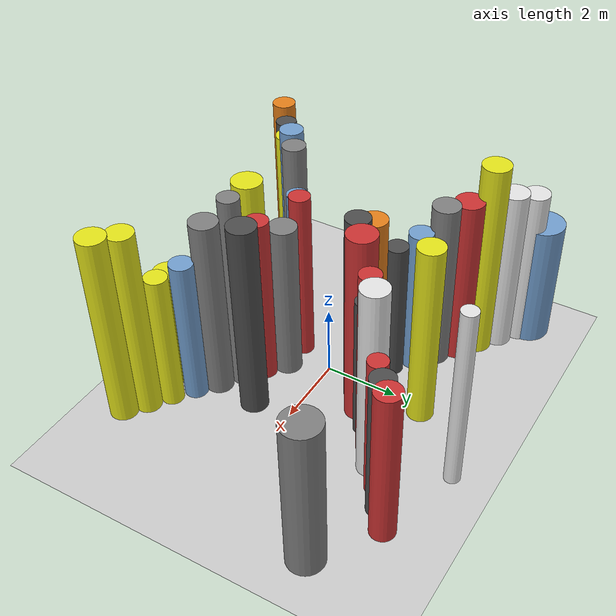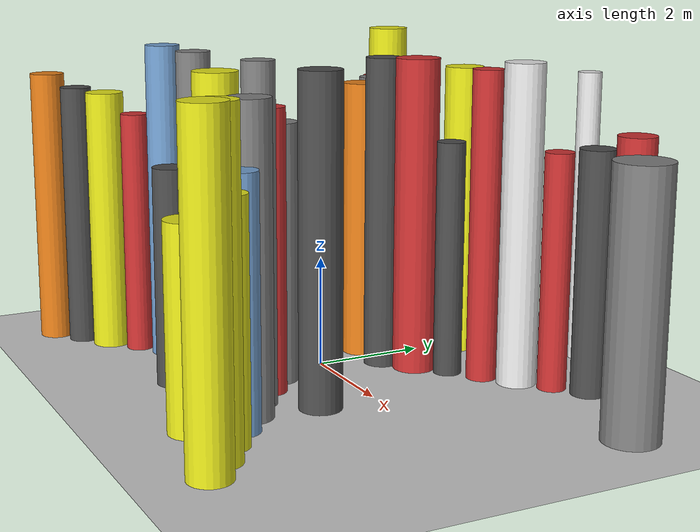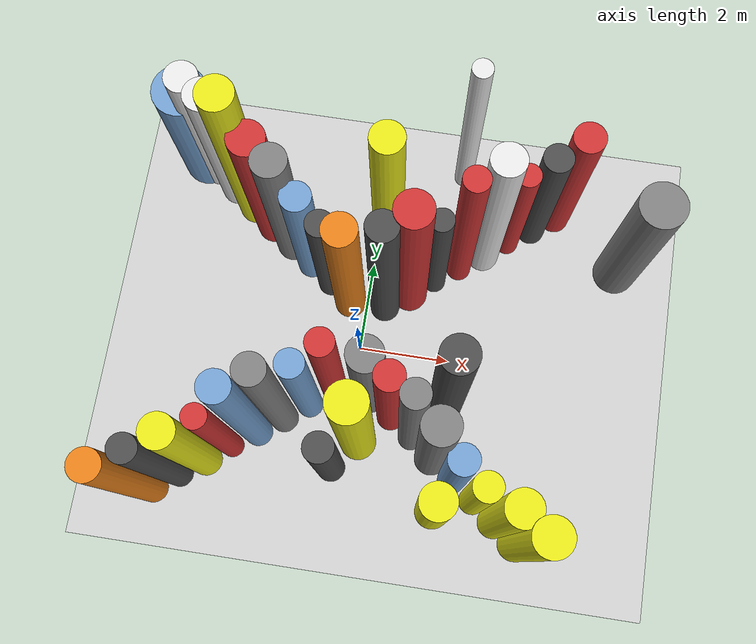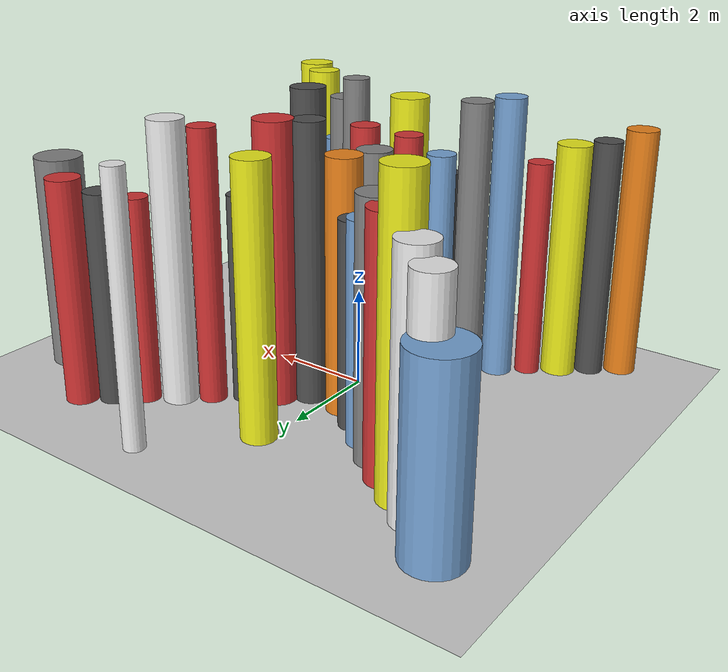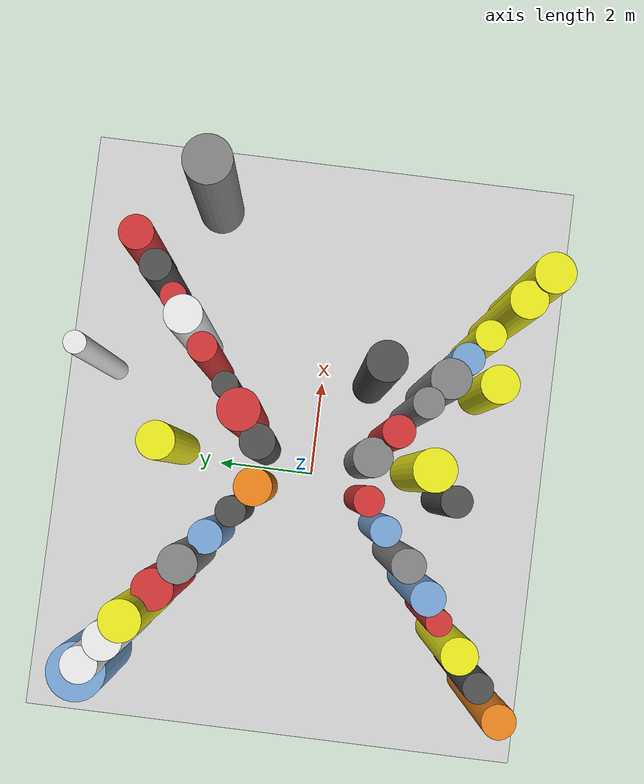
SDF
<?xml version='1.0'?>
<sdf version='1.6'>
  <world name='routeA_rl_v1__dense_recovery__rl_train__bottleneck_corridor__000064'>
    <!-- Sun light -->
    <light name='sun' type='directional'>
      <cast_shadows>1</cast_shadows>
      <pose>0 0 10 0 0 0</pose>
      <diffuse>0.8 0.8 0.8 1</diffuse>
      <specular>0.2 0.2 0.2 1</specular>
      <attenuation>
        <range>1000</range>
        <constant>0.9</constant>
        <linear>0.01</linear>
        <quadratic>0.001</quadratic>
      </attenuation>
      <direction>-0.5 0.1 -0.9</direction>
    </light>

    <!-- Ground plane -->
    <model name='ground_plane'>
      <static>1</static>
      <link name='link'>
        <collision name='collision'>
          <geometry>
            <plane>
              <normal>0 0 1</normal>
              <size>100 100</size>
            </plane>
          </geometry>
          <surface>
            <contact>
              <collide_bitmask>65535</collide_bitmask>
              <ode/>
            </contact>
            <friction>
              <ode>
                <mu>100</mu>
                <mu2>50</mu2>
              </ode>
              <torsional><ode/></torsional>
            </friction>
            <bounce/>
          </surface>
          <max_contacts>10</max_contacts>
        </collision>
        <visual name='visual'>
          <cast_shadows>0</cast_shadows>
          <geometry>
            <plane>
              <normal>0 0 1</normal>
              <size>100 100</size>
            </plane>
          </geometry>
          <material>
            <script>
              <uri>file://media/materials/scripts/gazebo.material</uri>
              <n>Gazebo/Grey</n>
            </script>
          </material>
        </visual>
      </link>
    </model>

    <!-- Environment -->
    <magnetic_field>6e-06 2.3e-05 -4.2e-05</magnetic_field>
    <atmosphere type='adiabatic'/>
    <physics name='default_physics' default='0' type='ode'>
      <gravity>0 0 -9.8</gravity>
      <max_step_size>0.004</max_step_size>
      <real_time_factor>1</real_time_factor>
      <real_time_update_rate>250</real_time_update_rate>
    </physics>
    <scene>
      <ambient>0.4 0.4 0.4 1</ambient>
      <background>0.7 0.7 0.7 1</background>
      <shadows>1</shadows>
    </scene>
    <wind/>
    <spherical_coordinates>
      <surface_model>EARTH_WGS84</surface_model>
      <latitude_deg>0</latitude_deg>
      <longitude_deg>0</longitude_deg>
      <elevation>0</elevation>
      <heading_deg>0</heading_deg>
    </spherical_coordinates>

    <!-- ============ OBSTACLES (40) ============ -->
    <model name='funnel_l_0'>
      <static>1</static>
      <link name='link'>
        <visual name='visual'>
          <geometry>
            <cylinder>
              <radius>0.3156</radius>
              <length>5.1318</length>
            </cylinder>
          </geometry>
          <material>
            <script>
              <n>Gazebo/Orange</n>
              <uri>file://media/materials/scripts/gazebo.material</uri>
            </script>
            <ambient>0.9 0.5 0.1 1</ambient>
          </material>
        </visual>
        <collision name='collision'>
          <geometry>
            <cylinder>
              <radius>0.3156</radius>
              <length>5.1318</length>
            </cylinder>
          </geometry>
          <max_contacts>10</max_contacts>
          <surface>
            <contact><ode/></contact>
            <bounce/>
            <friction>
              <ode><mu>1</mu><mu2>1</mu2></ode>
              <torsional><ode/></torsional>
            </friction>
          </surface>
        </collision>
      </link>
      <pose>-4.0000 -3.8000 2.5659 0 0 0.0000</pose>
    </model>

    <model name='funnel_r_0'>
      <static>1</static>
      <link name='link'>
        <visual name='visual'>
          <geometry>
            <cylinder>
              <radius>0.3508</radius>
              <length>4.6674</length>
            </cylinder>
          </geometry>
          <material>
            <script>
              <n>Gazebo/White</n>
              <uri>file://media/materials/scripts/gazebo.material</uri>
            </script>
            <ambient>0.9 0.9 0.9 1</ambient>
          </material>
        </visual>
        <collision name='collision'>
          <geometry>
            <cylinder>
              <radius>0.3508</radius>
              <length>4.6674</length>
            </cylinder>
          </geometry>
          <max_contacts>10</max_contacts>
          <surface>
            <contact><ode/></contact>
            <bounce/>
            <friction>
              <ode><mu>1</mu><mu2>1</mu2></ode>
              <torsional><ode/></torsional>
            </friction>
          </surface>
        </collision>
      </link>
      <pose>-4.0000 3.8000 2.3337 0 0 0.0000</pose>
    </model>

    <model name='funnel_l_1'>
      <static>1</static>
      <link name='link'>
        <visual name='visual'>
          <geometry>
            <cylinder>
              <radius>0.2849</radius>
              <length>4.9061</length>
            </cylinder>
          </geometry>
          <material>
            <script>
              <n>Gazebo/DarkGrey</n>
              <uri>file://media/materials/scripts/gazebo.material</uri>
            </script>
            <ambient>0.3 0.3 0.3 1</ambient>
          </material>
        </visual>
        <collision name='collision'>
          <geometry>
            <cylinder>
              <radius>0.2849</radius>
              <length>4.9061</length>
            </cylinder>
          </geometry>
          <max_contacts>10</max_contacts>
          <surface>
            <contact><ode/></contact>
            <bounce/>
            <friction>
              <ode><mu>1</mu><mu2>1</mu2></ode>
              <torsional><ode/></torsional>
            </friction>
          </surface>
        </collision>
      </link>
      <pose>-3.4857 -3.4071 2.4531 0 0 0.0000</pose>
    </model>

    <model name='funnel_r_1'>
      <static>1</static>
      <link name='link'>
        <visual name='visual'>
          <geometry>
            <cylinder>
              <radius>0.3702</radius>
              <length>4.8591</length>
            </cylinder>
          </geometry>
          <material>
            <script>
              <n>Gazebo/White</n>
              <uri>file://media/materials/scripts/gazebo.material</uri>
            </script>
            <ambient>0.9 0.9 0.9 1</ambient>
          </material>
        </visual>
        <collision name='collision'>
          <geometry>
            <cylinder>
              <radius>0.3702</radius>
              <length>4.8591</length>
            </cylinder>
          </geometry>
          <max_contacts>10</max_contacts>
          <surface>
            <contact><ode/></contact>
            <bounce/>
            <friction>
              <ode><mu>1</mu><mu2>1</mu2></ode>
              <torsional><ode/></torsional>
            </friction>
          </surface>
        </collision>
      </link>
      <pose>-3.4857 3.4071 2.4295 0 0 0.0000</pose>
    </model>

    <model name='funnel_l_2'>
      <static>1</static>
      <link name='link'>
        <visual name='visual'>
          <geometry>
            <cylinder>
              <radius>0.3476</radius>
              <length>4.8487</length>
            </cylinder>
          </geometry>
          <material>
            <script>
              <n>Gazebo/Yellow</n>
              <uri>file://media/materials/scripts/gazebo.material</uri>
            </script>
            <ambient>0.9 0.9 0.1 1</ambient>
          </material>
        </visual>
        <collision name='collision'>
          <geometry>
            <cylinder>
              <radius>0.3476</radius>
              <length>4.8487</length>
            </cylinder>
          </geometry>
          <max_contacts>10</max_contacts>
          <surface>
            <contact><ode/></contact>
            <bounce/>
            <friction>
              <ode><mu>1</mu><mu2>1</mu2></ode>
              <torsional><ode/></torsional>
            </friction>
          </surface>
        </collision>
      </link>
      <pose>-2.9714 -3.0143 2.4244 0 0 0.0000</pose>
    </model>

    <model name='funnel_r_2'>
      <static>1</static>
      <link name='link'>
        <visual name='visual'>
          <geometry>
            <cylinder>
              <radius>0.3817</radius>
              <length>5.8214</length>
            </cylinder>
          </geometry>
          <material>
            <script>
              <n>Gazebo/Yellow</n>
              <uri>file://media/materials/scripts/gazebo.material</uri>
            </script>
            <ambient>0.9 0.9 0.1 1</ambient>
          </material>
        </visual>
        <collision name='collision'>
          <geometry>
            <cylinder>
              <radius>0.3817</radius>
              <length>5.8214</length>
            </cylinder>
          </geometry>
          <max_contacts>10</max_contacts>
          <surface>
            <contact><ode/></contact>
            <bounce/>
            <friction>
              <ode><mu>1</mu><mu2>1</mu2></ode>
              <torsional><ode/></torsional>
            </friction>
          </surface>
        </collision>
      </link>
      <pose>-2.9714 3.0143 2.9107 0 0 0.0000</pose>
    </model>

    <model name='funnel_l_3'>
      <static>1</static>
      <link name='link'>
        <visual name='visual'>
          <geometry>
            <cylinder>
              <radius>0.2508</radius>
              <length>4.4868</length>
            </cylinder>
          </geometry>
          <material>
            <script>
              <n>Gazebo/Red</n>
              <uri>file://media/materials/scripts/gazebo.material</uri>
            </script>
            <ambient>0.8 0.2 0.2 1</ambient>
          </material>
        </visual>
        <collision name='collision'>
          <geometry>
            <cylinder>
              <radius>0.2508</radius>
              <length>4.4868</length>
            </cylinder>
          </geometry>
          <max_contacts>10</max_contacts>
          <surface>
            <contact><ode/></contact>
            <bounce/>
            <friction>
              <ode><mu>1</mu><mu2>1</mu2></ode>
              <torsional><ode/></torsional>
            </friction>
          </surface>
        </collision>
      </link>
      <pose>-2.4571 -2.6214 2.2434 0 0 0.0000</pose>
    </model>

    <model name='funnel_r_3'>
      <static>1</static>
      <link name='link'>
        <visual name='visual'>
          <geometry>
            <cylinder>
              <radius>0.3904</radius>
              <length>4.9308</length>
            </cylinder>
          </geometry>
          <material>
            <script>
              <n>Gazebo/Red</n>
              <uri>file://media/materials/scripts/gazebo.material</uri>
            </script>
            <ambient>0.8 0.2 0.2 1</ambient>
          </material>
        </visual>
        <collision name='collision'>
          <geometry>
            <cylinder>
              <radius>0.3904</radius>
              <length>4.9308</length>
            </cylinder>
          </geometry>
          <max_contacts>10</max_contacts>
          <surface>
            <contact><ode/></contact>
            <bounce/>
            <friction>
              <ode><mu>1</mu><mu2>1</mu2></ode>
              <torsional><ode/></torsional>
            </friction>
          </surface>
        </collision>
      </link>
      <pose>-2.4571 2.6214 2.4654 0 0 0.0000</pose>
    </model>

    <model name='funnel_l_4'>
      <static>1</static>
      <link name='link'>
        <visual name='visual'>
          <geometry>
            <cylinder>
              <radius>0.3124</radius>
              <length>5.7771</length>
            </cylinder>
          </geometry>
          <material>
            <script>
              <n>Gazebo/Blue</n>
              <uri>file://media/materials/scripts/gazebo.material</uri>
            </script>
            <ambient>0.447 0.624 0.812 1</ambient>
          </material>
        </visual>
        <collision name='collision'>
          <geometry>
            <cylinder>
              <radius>0.3124</radius>
              <length>5.7771</length>
            </cylinder>
          </geometry>
          <max_contacts>10</max_contacts>
          <surface>
            <contact><ode/></contact>
            <bounce/>
            <friction>
              <ode><mu>1</mu><mu2>1</mu2></ode>
              <torsional><ode/></torsional>
            </friction>
          </surface>
        </collision>
      </link>
      <pose>-1.9429 -2.2286 2.8886 0 0 0.0000</pose>
    </model>

    <model name='funnel_r_4'>
      <static>1</static>
      <link name='link'>
        <visual name='visual'>
          <geometry>
            <cylinder>
              <radius>0.3683</radius>
              <length>4.9725</length>
            </cylinder>
          </geometry>
          <material>
            <script>
              <n>Gazebo/Grey</n>
              <uri>file://media/materials/scripts/gazebo.material</uri>
            </script>
            <ambient>0.5 0.5 0.5 1</ambient>
          </material>
        </visual>
        <collision name='collision'>
          <geometry>
            <cylinder>
              <radius>0.3683</radius>
              <length>4.9725</length>
            </cylinder>
          </geometry>
          <max_contacts>10</max_contacts>
          <surface>
            <contact><ode/></contact>
            <bounce/>
            <friction>
              <ode><mu>1</mu><mu2>1</mu2></ode>
              <torsional><ode/></torsional>
            </friction>
          </surface>
        </collision>
      </link>
      <pose>-1.9429 2.2286 2.4862 0 0 0.0000</pose>
    </model>

    <model name='funnel_l_5'>
      <static>1</static>
      <link name='link'>
        <visual name='visual'>
          <geometry>
            <cylinder>
              <radius>0.3131</radius>
              <length>5.6935</length>
            </cylinder>
          </geometry>
          <material>
            <script>
              <n>Gazebo/Grey</n>
              <uri>file://media/materials/scripts/gazebo.material</uri>
            </script>
            <ambient>0.5 0.5 0.5 1</ambient>
          </material>
        </visual>
        <collision name='collision'>
          <geometry>
            <cylinder>
              <radius>0.3131</radius>
              <length>5.6935</length>
            </cylinder>
          </geometry>
          <max_contacts>10</max_contacts>
          <surface>
            <contact><ode/></contact>
            <bounce/>
            <friction>
              <ode><mu>1</mu><mu2>1</mu2></ode>
              <torsional><ode/></torsional>
            </friction>
          </surface>
        </collision>
      </link>
      <pose>-1.4286 -1.8357 2.8467 0 0 0.0000</pose>
    </model>

    <model name='funnel_r_5'>
      <static>1</static>
      <link name='link'>
        <visual name='visual'>
          <geometry>
            <cylinder>
              <radius>0.3254</radius>
              <length>4.3344</length>
            </cylinder>
          </geometry>
          <material>
            <script>
              <n>Gazebo/Blue</n>
              <uri>file://media/materials/scripts/gazebo.material</uri>
            </script>
            <ambient>0.447 0.624 0.812 1</ambient>
          </material>
        </visual>
        <collision name='collision'>
          <geometry>
            <cylinder>
              <radius>0.3254</radius>
              <length>4.3344</length>
            </cylinder>
          </geometry>
          <max_contacts>10</max_contacts>
          <surface>
            <contact><ode/></contact>
            <bounce/>
            <friction>
              <ode><mu>1</mu><mu2>1</mu2></ode>
              <torsional><ode/></torsional>
            </friction>
          </surface>
        </collision>
      </link>
      <pose>-1.4286 1.8357 2.1672 0 0 0.0000</pose>
    </model>

    <model name='funnel_l_6'>
      <static>1</static>
      <link name='link'>
        <visual name='visual'>
          <geometry>
            <cylinder>
              <radius>0.2907</radius>
              <length>4.6531</length>
            </cylinder>
          </geometry>
          <material>
            <script>
              <n>Gazebo/Blue</n>
              <uri>file://media/materials/scripts/gazebo.material</uri>
            </script>
            <ambient>0.447 0.624 0.812 1</ambient>
          </material>
        </visual>
        <collision name='collision'>
          <geometry>
            <cylinder>
              <radius>0.2907</radius>
              <length>4.6531</length>
            </cylinder>
          </geometry>
          <max_contacts>10</max_contacts>
          <surface>
            <contact><ode/></contact>
            <bounce/>
            <friction>
              <ode><mu>1</mu><mu2>1</mu2></ode>
              <torsional><ode/></torsional>
            </friction>
          </surface>
        </collision>
      </link>
      <pose>-0.9143 -1.4429 2.3266 0 0 0.0000</pose>
    </model>

    <model name='funnel_r_6'>
      <static>1</static>
      <link name='link'>
        <visual name='visual'>
          <geometry>
            <cylinder>
              <radius>0.2925</radius>
              <length>4.1059</length>
            </cylinder>
          </geometry>
          <material>
            <script>
              <n>Gazebo/DarkGrey</n>
              <uri>file://media/materials/scripts/gazebo.material</uri>
            </script>
            <ambient>0.3 0.3 0.3 1</ambient>
          </material>
        </visual>
        <collision name='collision'>
          <geometry>
            <cylinder>
              <radius>0.2925</radius>
              <length>4.1059</length>
            </cylinder>
          </geometry>
          <max_contacts>10</max_contacts>
          <surface>
            <contact><ode/></contact>
            <bounce/>
            <friction>
              <ode><mu>1</mu><mu2>1</mu2></ode>
              <torsional><ode/></torsional>
            </friction>
          </surface>
        </collision>
      </link>
      <pose>-0.9143 1.4429 2.0529 0 0 0.0000</pose>
    </model>

    <model name='funnel_l_7'>
      <static>1</static>
      <link name='link'>
        <visual name='visual'>
          <geometry>
            <cylinder>
              <radius>0.2832</radius>
              <length>5.0353</length>
            </cylinder>
          </geometry>
          <material>
            <script>
              <n>Gazebo/Red</n>
              <uri>file://media/materials/scripts/gazebo.material</uri>
            </script>
            <ambient>0.8 0.2 0.2 1</ambient>
          </material>
        </visual>
        <collision name='collision'>
          <geometry>
            <cylinder>
              <radius>0.2832</radius>
              <length>5.0353</length>
            </cylinder>
          </geometry>
          <max_contacts>10</max_contacts>
          <surface>
            <contact><ode/></contact>
            <bounce/>
            <friction>
              <ode><mu>1</mu><mu2>1</mu2></ode>
              <torsional><ode/></torsional>
            </friction>
          </surface>
        </collision>
      </link>
      <pose>-0.4000 -1.0500 2.5176 0 0 0.0000</pose>
    </model>

    <model name='funnel_r_7'>
      <static>1</static>
      <link name='link'>
        <visual name='visual'>
          <geometry>
            <cylinder>
              <radius>0.3536</radius>
              <length>5.0909</length>
            </cylinder>
          </geometry>
          <material>
            <script>
              <n>Gazebo/Orange</n>
              <uri>file://media/materials/scripts/gazebo.material</uri>
            </script>
            <ambient>0.9 0.5 0.1 1</ambient>
          </material>
        </visual>
        <collision name='collision'>
          <geometry>
            <cylinder>
              <radius>0.3536</radius>
              <length>5.0909</length>
            </cylinder>
          </geometry>
          <max_contacts>10</max_contacts>
          <surface>
            <contact><ode/></contact>
            <bounce/>
            <friction>
              <ode><mu>1</mu><mu2>1</mu2></ode>
              <torsional><ode/></torsional>
            </friction>
          </surface>
        </collision>
      </link>
      <pose>-0.4000 1.0500 2.5455 0 0 0.0000</pose>
    </model>

    <model name='funnel_out_l_0'>
      <static>1</static>
      <link name='link'>
        <visual name='visual'>
          <geometry>
            <cylinder>
              <radius>0.3735</radius>
              <length>4.6185</length>
            </cylinder>
          </geometry>
          <material>
            <script>
              <n>Gazebo/Grey</n>
              <uri>file://media/materials/scripts/gazebo.material</uri>
            </script>
            <ambient>0.5 0.5 0.5 1</ambient>
          </material>
        </visual>
        <collision name='collision'>
          <geometry>
            <cylinder>
              <radius>0.3735</radius>
              <length>4.6185</length>
            </cylinder>
          </geometry>
          <max_contacts>10</max_contacts>
          <surface>
            <contact><ode/></contact>
            <bounce/>
            <friction>
              <ode><mu>1</mu><mu2>1</mu2></ode>
              <torsional><ode/></torsional>
            </friction>
          </surface>
        </collision>
      </link>
      <pose>0.4000 -1.0500 2.3092 0 0 0.0000</pose>
    </model>

    <model name='funnel_out_r_0'>
      <static>1</static>
      <link name='link'>
        <visual name='visual'>
          <geometry>
            <cylinder>
              <radius>0.3239</radius>
              <length>5.6220</length>
            </cylinder>
          </geometry>
          <material>
            <script>
              <n>Gazebo/DarkGrey</n>
              <uri>file://media/materials/scripts/gazebo.material</uri>
            </script>
            <ambient>0.3 0.3 0.3 1</ambient>
          </material>
        </visual>
        <collision name='collision'>
          <geometry>
            <cylinder>
              <radius>0.3239</radius>
              <length>5.6220</length>
            </cylinder>
          </geometry>
          <max_contacts>10</max_contacts>
          <surface>
            <contact><ode/></contact>
            <bounce/>
            <friction>
              <ode><mu>1</mu><mu2>1</mu2></ode>
              <torsional><ode/></torsional>
            </friction>
          </surface>
        </collision>
      </link>
      <pose>0.4000 1.0500 2.8110 0 0 0.0000</pose>
    </model>

    <model name='funnel_out_l_1'>
      <static>1</static>
      <link name='link'>
        <visual name='visual'>
          <geometry>
            <cylinder>
              <radius>0.3063</radius>
              <length>4.9660</length>
            </cylinder>
          </geometry>
          <material>
            <script>
              <n>Gazebo/Red</n>
              <uri>file://media/materials/scripts/gazebo.material</uri>
            </script>
            <ambient>0.8 0.2 0.2 1</ambient>
          </material>
        </visual>
        <collision name='collision'>
          <geometry>
            <cylinder>
              <radius>0.3063</radius>
              <length>4.9660</length>
            </cylinder>
          </geometry>
          <max_contacts>10</max_contacts>
          <surface>
            <contact><ode/></contact>
            <bounce/>
            <friction>
              <ode><mu>1</mu><mu2>1</mu2></ode>
              <torsional><ode/></torsional>
            </friction>
          </surface>
        </collision>
      </link>
      <pose>0.9143 -1.4429 2.4830 0 0 0.0000</pose>
    </model>

    <model name='funnel_out_r_1'>
      <static>1</static>
      <link name='link'>
        <visual name='visual'>
          <geometry>
            <cylinder>
              <radius>0.3908</radius>
              <length>5.6394</length>
            </cylinder>
          </geometry>
          <material>
            <script>
              <n>Gazebo/Red</n>
              <uri>file://media/materials/scripts/gazebo.material</uri>
            </script>
            <ambient>0.8 0.2 0.2 1</ambient>
          </material>
        </visual>
        <collision name='collision'>
          <geometry>
            <cylinder>
              <radius>0.3908</radius>
              <length>5.6394</length>
            </cylinder>
          </geometry>
          <max_contacts>10</max_contacts>
          <surface>
            <contact><ode/></contact>
            <bounce/>
            <friction>
              <ode><mu>1</mu><mu2>1</mu2></ode>
              <torsional><ode/></torsional>
            </friction>
          </surface>
        </collision>
      </link>
      <pose>0.9143 1.4429 2.8197 0 0 0.0000</pose>
    </model>

    <model name='funnel_out_l_2'>
      <static>1</static>
      <link name='link'>
        <visual name='visual'>
          <geometry>
            <cylinder>
              <radius>0.2823</radius>
              <length>5.8036</length>
            </cylinder>
          </geometry>
          <material>
            <script>
              <n>Gazebo/Grey</n>
              <uri>file://media/materials/scripts/gazebo.material</uri>
            </script>
            <ambient>0.5 0.5 0.5 1</ambient>
          </material>
        </visual>
        <collision name='collision'>
          <geometry>
            <cylinder>
              <radius>0.2823</radius>
              <length>5.8036</length>
            </cylinder>
          </geometry>
          <max_contacts>10</max_contacts>
          <surface>
            <contact><ode/></contact>
            <bounce/>
            <friction>
              <ode><mu>1</mu><mu2>1</mu2></ode>
              <torsional><ode/></torsional>
            </friction>
          </surface>
        </collision>
      </link>
      <pose>1.4286 -1.8357 2.9018 0 0 0.0000</pose>
    </model>

    <model name='funnel_out_r_2'>
      <static>1</static>
      <link name='link'>
        <visual name='visual'>
          <geometry>
            <cylinder>
              <radius>0.2514</radius>
              <length>4.2108</length>
            </cylinder>
          </geometry>
          <material>
            <script>
              <n>Gazebo/DarkGrey</n>
              <uri>file://media/materials/scripts/gazebo.material</uri>
            </script>
            <ambient>0.3 0.3 0.3 1</ambient>
          </material>
        </visual>
        <collision name='collision'>
          <geometry>
            <cylinder>
              <radius>0.2514</radius>
              <length>4.2108</length>
            </cylinder>
          </geometry>
          <max_contacts>10</max_contacts>
          <surface>
            <contact><ode/></contact>
            <bounce/>
            <friction>
              <ode><mu>1</mu><mu2>1</mu2></ode>
              <torsional><ode/></torsional>
            </friction>
          </surface>
        </collision>
      </link>
      <pose>1.4286 1.8357 2.1054 0 0 0.0000</pose>
    </model>

    <model name='funnel_out_l_3'>
      <static>1</static>
      <link name='link'>
        <visual name='visual'>
          <geometry>
            <cylinder>
              <radius>0.3729</radius>
              <length>5.2935</length>
            </cylinder>
          </geometry>
          <material>
            <script>
              <n>Gazebo/Grey</n>
              <uri>file://media/materials/scripts/gazebo.material</uri>
            </script>
            <ambient>0.5 0.5 0.5 1</ambient>
          </material>
        </visual>
        <collision name='collision'>
          <geometry>
            <cylinder>
              <radius>0.3729</radius>
              <length>5.2935</length>
            </cylinder>
          </geometry>
          <max_contacts>10</max_contacts>
          <surface>
            <contact><ode/></contact>
            <bounce/>
            <friction>
              <ode><mu>1</mu><mu2>1</mu2></ode>
              <torsional><ode/></torsional>
            </friction>
          </surface>
        </collision>
      </link>
      <pose>1.9429 -2.2286 2.6467 0 0 0.0000</pose>
    </model>

    <model name='funnel_out_r_3'>
      <static>1</static>
      <link name='link'>
        <visual name='visual'>
          <geometry>
            <cylinder>
              <radius>0.2732</radius>
              <length>5.5075</length>
            </cylinder>
          </geometry>
          <material>
            <script>
              <n>Gazebo/Red</n>
              <uri>file://media/materials/scripts/gazebo.material</uri>
            </script>
            <ambient>0.8 0.2 0.2 1</ambient>
          </material>
        </visual>
        <collision name='collision'>
          <geometry>
            <cylinder>
              <radius>0.2732</radius>
              <length>5.5075</length>
            </cylinder>
          </geometry>
          <max_contacts>10</max_contacts>
          <surface>
            <contact><ode/></contact>
            <bounce/>
            <friction>
              <ode><mu>1</mu><mu2>1</mu2></ode>
              <torsional><ode/></torsional>
            </friction>
          </surface>
        </collision>
      </link>
      <pose>1.9429 2.2286 2.7537 0 0 0.0000</pose>
    </model>

    <model name='funnel_out_l_4'>
      <static>1</static>
      <link name='link'>
        <visual name='visual'>
          <geometry>
            <cylinder>
              <radius>0.3114</radius>
              <length>4.2474</length>
            </cylinder>
          </geometry>
          <material>
            <script>
              <n>Gazebo/Blue</n>
              <uri>file://media/materials/scripts/gazebo.material</uri>
            </script>
            <ambient>0.447 0.624 0.812 1</ambient>
          </material>
        </visual>
        <collision name='collision'>
          <geometry>
            <cylinder>
              <radius>0.3114</radius>
              <length>4.2474</length>
            </cylinder>
          </geometry>
          <max_contacts>10</max_contacts>
          <surface>
            <contact><ode/></contact>
            <bounce/>
            <friction>
              <ode><mu>1</mu><mu2>1</mu2></ode>
              <torsional><ode/></torsional>
            </friction>
          </surface>
        </collision>
      </link>
      <pose>2.4571 -2.6214 2.1237 0 0 0.0000</pose>
    </model>

    <model name='funnel_out_r_4'>
      <static>1</static>
      <link name='link'>
        <visual name='visual'>
          <geometry>
            <cylinder>
              <radius>0.3531</radius>
              <length>5.6542</length>
            </cylinder>
          </geometry>
          <material>
            <script>
              <n>Gazebo/White</n>
              <uri>file://media/materials/scripts/gazebo.material</uri>
            </script>
            <ambient>0.9 0.9 0.9 1</ambient>
          </material>
        </visual>
        <collision name='collision'>
          <geometry>
            <cylinder>
              <radius>0.3531</radius>
              <length>5.6542</length>
            </cylinder>
          </geometry>
          <max_contacts>10</max_contacts>
          <surface>
            <contact><ode/></contact>
            <bounce/>
            <friction>
              <ode><mu>1</mu><mu2>1</mu2></ode>
              <torsional><ode/></torsional>
            </friction>
          </surface>
        </collision>
      </link>
      <pose>2.4571 2.6214 2.8271 0 0 0.0000</pose>
    </model>

    <model name='funnel_out_l_5'>
      <static>1</static>
      <link name='link'>
        <visual name='visual'>
          <geometry>
            <cylinder>
              <radius>0.3013</radius>
              <length>4.0218</length>
            </cylinder>
          </geometry>
          <material>
            <script>
              <n>Gazebo/Yellow</n>
              <uri>file://media/materials/scripts/gazebo.material</uri>
            </script>
            <ambient>0.9 0.9 0.1 1</ambient>
          </material>
        </visual>
        <collision name='collision'>
          <geometry>
            <cylinder>
              <radius>0.3013</radius>
              <length>4.0218</length>
            </cylinder>
          </geometry>
          <max_contacts>10</max_contacts>
          <surface>
            <contact><ode/></contact>
            <bounce/>
            <friction>
              <ode><mu>1</mu><mu2>1</mu2></ode>
              <torsional><ode/></torsional>
            </friction>
          </surface>
        </collision>
      </link>
      <pose>2.9714 -3.0143 2.0109 0 0 0.0000</pose>
    </model>

    <model name='funnel_out_r_5'>
      <static>1</static>
      <link name='link'>
        <visual name='visual'>
          <geometry>
            <cylinder>
              <radius>0.2546</radius>
              <length>4.1739</length>
            </cylinder>
          </geometry>
          <material>
            <script>
              <n>Gazebo/Red</n>
              <uri>file://media/materials/scripts/gazebo.material</uri>
            </script>
            <ambient>0.8 0.2 0.2 1</ambient>
          </material>
        </visual>
        <collision name='collision'>
          <geometry>
            <cylinder>
              <radius>0.2546</radius>
              <length>4.1739</length>
            </cylinder>
          </geometry>
          <max_contacts>10</max_contacts>
          <surface>
            <contact><ode/></contact>
            <bounce/>
            <friction>
              <ode><mu>1</mu><mu2>1</mu2></ode>
              <torsional><ode/></torsional>
            </friction>
          </surface>
        </collision>
      </link>
      <pose>2.9714 3.0143 2.0870 0 0 0.0000</pose>
    </model>

    <model name='funnel_out_l_6'>
      <static>1</static>
      <link name='link'>
        <visual name='visual'>
          <geometry>
            <cylinder>
              <radius>0.3497</radius>
              <length>5.5105</length>
            </cylinder>
          </geometry>
          <material>
            <script>
              <n>Gazebo/Yellow</n>
              <uri>file://media/materials/scripts/gazebo.material</uri>
            </script>
            <ambient>0.9 0.9 0.1 1</ambient>
          </material>
        </visual>
        <collision name='collision'>
          <geometry>
            <cylinder>
              <radius>0.3497</radius>
              <length>5.5105</length>
            </cylinder>
          </geometry>
          <max_contacts>10</max_contacts>
          <surface>
            <contact><ode/></contact>
            <bounce/>
            <friction>
              <ode><mu>1</mu><mu2>1</mu2></ode>
              <torsional><ode/></torsional>
            </friction>
          </surface>
        </collision>
      </link>
      <pose>3.4857 -3.4071 2.7552 0 0 0.0000</pose>
    </model>

    <model name='funnel_out_r_6'>
      <static>1</static>
      <link name='link'>
        <visual name='visual'>
          <geometry>
            <cylinder>
              <radius>0.3120</radius>
              <length>4.2804</length>
            </cylinder>
          </geometry>
          <material>
            <script>
              <n>Gazebo/DarkGrey</n>
              <uri>file://media/materials/scripts/gazebo.material</uri>
            </script>
            <ambient>0.3 0.3 0.3 1</ambient>
          </material>
        </visual>
        <collision name='collision'>
          <geometry>
            <cylinder>
              <radius>0.3120</radius>
              <length>4.2804</length>
            </cylinder>
          </geometry>
          <max_contacts>10</max_contacts>
          <surface>
            <contact><ode/></contact>
            <bounce/>
            <friction>
              <ode><mu>1</mu><mu2>1</mu2></ode>
              <torsional><ode/></torsional>
            </friction>
          </surface>
        </collision>
      </link>
      <pose>3.4857 3.4071 2.1402 0 0 0.0000</pose>
    </model>

    <model name='funnel_out_l_7'>
      <static>1</static>
      <link name='link'>
        <visual name='visual'>
          <geometry>
            <cylinder>
              <radius>0.3730</radius>
              <length>5.5806</length>
            </cylinder>
          </geometry>
          <material>
            <script>
              <n>Gazebo/Yellow</n>
              <uri>file://media/materials/scripts/gazebo.material</uri>
            </script>
            <ambient>0.9 0.9 0.1 1</ambient>
          </material>
        </visual>
        <collision name='collision'>
          <geometry>
            <cylinder>
              <radius>0.3730</radius>
              <length>5.5806</length>
            </cylinder>
          </geometry>
          <max_contacts>10</max_contacts>
          <surface>
            <contact><ode/></contact>
            <bounce/>
            <friction>
              <ode><mu>1</mu><mu2>1</mu2></ode>
              <torsional><ode/></torsional>
            </friction>
          </surface>
        </collision>
      </link>
      <pose>4.0000 -3.8000 2.7903 0 0 0.0000</pose>
    </model>

    <model name='funnel_out_r_7'>
      <static>1</static>
      <link name='link'>
        <visual name='visual'>
          <geometry>
            <cylinder>
              <radius>0.3334</radius>
              <length>4.5406</length>
            </cylinder>
          </geometry>
          <material>
            <script>
              <n>Gazebo/Red</n>
              <uri>file://media/materials/scripts/gazebo.material</uri>
            </script>
            <ambient>0.8 0.2 0.2 1</ambient>
          </material>
        </visual>
        <collision name='collision'>
          <geometry>
            <cylinder>
              <radius>0.3334</radius>
              <length>4.5406</length>
            </cylinder>
          </geometry>
          <max_contacts>10</max_contacts>
          <surface>
            <contact><ode/></contact>
            <bounce/>
            <friction>
              <ode><mu>1</mu><mu2>1</mu2></ode>
              <torsional><ode/></torsional>
            </friction>
          </surface>
        </collision>
      </link>
      <pose>4.0000 3.8000 2.2703 0 0 0.0000</pose>
    </model>

    <model name='bn_scatter_0'>
      <static>1</static>
      <link name='link'>
        <visual name='visual'>
          <geometry>
            <cylinder>
              <radius>0.3100</radius>
              <length>3.8671</length>
            </cylinder>
          </geometry>
          <material>
            <script>
              <n>Gazebo/DarkGrey</n>
              <uri>file://media/materials/scripts/gazebo.material</uri>
            </script>
            <ambient>0.3 0.3 0.3 1</ambient>
          </material>
        </visual>
        <collision name='collision'>
          <geometry>
            <cylinder>
              <radius>0.3100</radius>
              <length>3.8671</length>
            </cylinder>
          </geometry>
          <max_contacts>10</max_contacts>
          <surface>
            <contact><ode/></contact>
            <bounce/>
            <friction>
              <ode><mu>1</mu><mu2>1</mu2></ode>
              <torsional><ode/></torsional>
            </friction>
          </surface>
        </collision>
      </link>
      <pose>-0.2167 -2.7655 1.9336 0 0 0.0000</pose>
    </model>

    <model name='bn_scatter_1'>
      <static>1</static>
      <link name='link'>
        <visual name='visual'>
          <geometry>
            <cylinder>
              <radius>0.3828</radius>
              <length>3.4889</length>
            </cylinder>
          </geometry>
          <material>
            <script>
              <n>Gazebo/Yellow</n>
              <uri>file://media/materials/scripts/gazebo.material</uri>
            </script>
            <ambient>0.9 0.9 0.1 1</ambient>
          </material>
        </visual>
        <collision name='collision'>
          <geometry>
            <cylinder>
              <radius>0.3828</radius>
              <length>3.4889</length>
            </cylinder>
          </geometry>
          <max_contacts>10</max_contacts>
          <surface>
            <contact><ode/></contact>
            <bounce/>
            <friction>
              <ode><mu>1</mu><mu2>1</mu2></ode>
              <torsional><ode/></torsional>
            </friction>
          </surface>
        </collision>
      </link>
      <pose>2.1297 -3.3764 1.7444 0 0 0.0000</pose>
    </model>

    <model name='bn_scatter_2'>
      <static>1</static>
      <link name='link'>
        <visual name='visual'>
          <geometry>
            <cylinder>
              <radius>0.4002</radius>
              <length>5.5271</length>
            </cylinder>
          </geometry>
          <material>
            <script>
              <n>Gazebo/Yellow</n>
              <uri>file://media/materials/scripts/gazebo.material</uri>
            </script>
            <ambient>0.9 0.9 0.1 1</ambient>
          </material>
        </visual>
        <collision name='collision'>
          <geometry>
            <cylinder>
              <radius>0.4002</radius>
              <length>5.5271</length>
            </cylinder>
          </geometry>
          <max_contacts>10</max_contacts>
          <surface>
            <contact><ode/></contact>
            <bounce/>
            <friction>
              <ode><mu>1</mu><mu2>1</mu2></ode>
              <torsional><ode/></torsional>
            </friction>
          </surface>
        </collision>
      </link>
      <pose>0.2847 -2.1139 2.7635 0 0 0.0000</pose>
    </model>

    <model name='bn_scatter_3'>
      <static>1</static>
      <link name='link'>
        <visual name='visual'>
          <geometry>
            <cylinder>
              <radius>0.3545</radius>
              <length>5.3543</length>
            </cylinder>
          </geometry>
          <material>
            <script>
              <n>Gazebo/Yellow</n>
              <uri>file://media/materials/scripts/gazebo.material</uri>
            </script>
            <ambient>0.9 0.9 0.1 1</ambient>
          </material>
        </visual>
        <collision name='collision'>
          <geometry>
            <cylinder>
              <radius>0.3545</radius>
              <length>5.3543</length>
            </cylinder>
          </geometry>
          <max_contacts>10</max_contacts>
          <surface>
            <contact><ode/></contact>
            <bounce/>
            <friction>
              <ode><mu>1</mu><mu2>1</mu2></ode>
              <torsional><ode/></torsional>
            </friction>
          </surface>
        </collision>
      </link>
      <pose>0.2076 2.8525 2.6772 0 0 0.0000</pose>
    </model>

    <model name='bn_scatter_4'>
      <static>1</static>
      <link name='link'>
        <visual name='visual'>
          <geometry>
            <cylinder>
              <radius>0.3730</radius>
              <length>5.6799</length>
            </cylinder>
          </geometry>
          <material>
            <script>
              <n>Gazebo/DarkGrey</n>
              <uri>file://media/materials/scripts/gazebo.material</uri>
            </script>
            <ambient>0.3 0.3 0.3 1</ambient>
          </material>
        </visual>
        <collision name='collision'>
          <geometry>
            <cylinder>
              <radius>0.3730</radius>
              <length>5.6799</length>
            </cylinder>
          </geometry>
          <max_contacts>10</max_contacts>
          <surface>
            <contact><ode/></contact>
            <bounce/>
            <friction>
              <ode><mu>1</mu><mu2>1</mu2></ode>
              <torsional><ode/></torsional>
            </friction>
          </surface>
        </collision>
      </link>
      <pose>2.0730 -1.0356 2.8400 0 0 0.0000</pose>
    </model>

    <model name='bn_scatter_5'>
      <static>1</static>
      <link name='link'>
        <visual name='visual'>
          <geometry>
            <cylinder>
              <radius>0.4862</radius>
              <length>4.4627</length>
            </cylinder>
          </geometry>
          <material>
            <script>
              <n>Gazebo/Grey</n>
              <uri>file://media/materials/scripts/gazebo.material</uri>
            </script>
            <ambient>0.5 0.5 0.5 1</ambient>
          </material>
        </visual>
        <collision name='collision'>
          <geometry>
            <cylinder>
              <radius>0.4862</radius>
              <length>4.4627</length>
            </cylinder>
          </geometry>
          <max_contacts>10</max_contacts>
          <surface>
            <contact><ode/></contact>
            <bounce/>
            <friction>
              <ode><mu>1</mu><mu2>1</mu2></ode>
              <torsional><ode/></torsional>
            </friction>
          </surface>
        </collision>
      </link>
      <pose>5.5355 2.6726 2.2314 0 0 0.0000</pose>
    </model>

    <model name='bn_scatter_6'>
      <static>1</static>
      <link name='link'>
        <visual name='visual'>
          <geometry>
            <cylinder>
              <radius>0.5761</radius>
              <length>3.6358</length>
            </cylinder>
          </geometry>
          <material>
            <script>
              <n>Gazebo/Blue</n>
              <uri>file://media/materials/scripts/gazebo.material</uri>
            </script>
            <ambient>0.447 0.624 0.812 1</ambient>
          </material>
        </visual>
        <collision name='collision'>
          <geometry>
            <cylinder>
              <radius>0.5761</radius>
              <length>3.6358</length>
            </cylinder>
          </geometry>
          <max_contacts>10</max_contacts>
          <surface>
            <contact><ode/></contact>
            <bounce/>
            <friction>
              <ode><mu>1</mu><mu2>1</mu2></ode>
              <torsional><ode/></torsional>
            </friction>
          </surface>
        </collision>
      </link>
      <pose>-4.2988 3.9988 1.8179 0 0 0.0000</pose>
    </model>

    <model name='bn_scatter_7'>
      <static>1</static>
      <link name='link'>
        <visual name='visual'>
          <geometry>
            <cylinder>
              <radius>0.2141</radius>
              <length>5.3245</length>
            </cylinder>
          </geometry>
          <material>
            <script>
              <n>Gazebo/White</n>
              <uri>file://media/materials/scripts/gazebo.material</uri>
            </script>
            <ambient>0.9 0.9 0.9 1</ambient>
          </material>
        </visual>
        <collision name='collision'>
          <geometry>
            <cylinder>
              <radius>0.2141</radius>
              <length>5.3245</length>
            </cylinder>
          </geometry>
          <max_contacts>10</max_contacts>
          <surface>
            <contact><ode/></contact>
            <bounce/>
            <friction>
              <ode><mu>1</mu><mu2>1</mu2></ode>
              <torsional><ode/></torsional>
            </friction>
          </surface>
        </collision>
      </link>
      <pose>1.7620 4.5059 2.6623 0 0 0.0000</pose>
    </model>

    <!-- GUI camera -->
    <gui fullscreen='0'>
      <camera name='user_camera'>
        <pose>-15 0 18 0 0.85 0.15</pose>
        <view_controller>orbit</view_controller>
        <projection_type>perspective</projection_type>
      </camera>
    </gui>
  </world>
</sdf>
